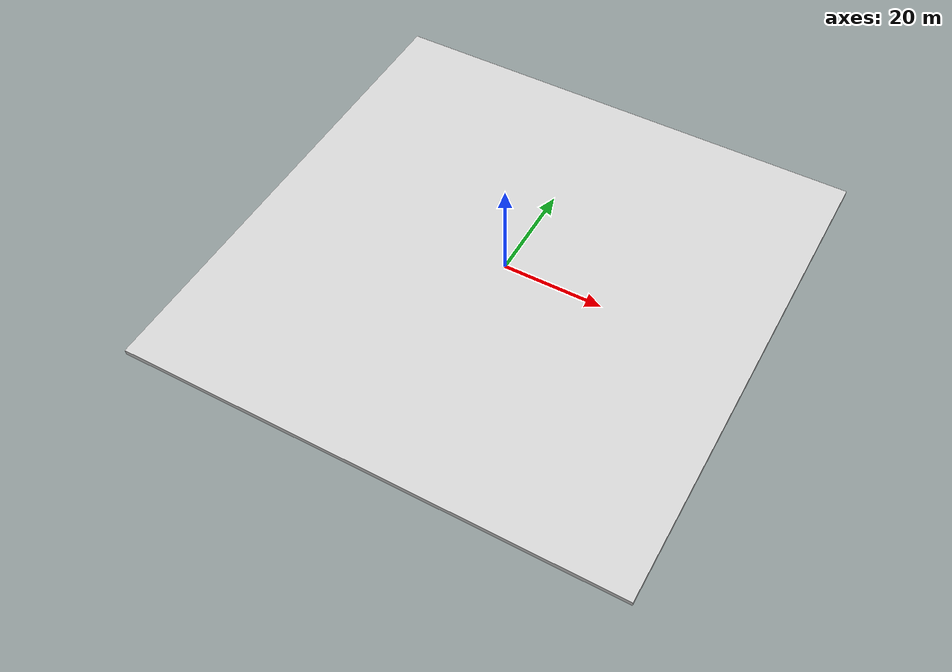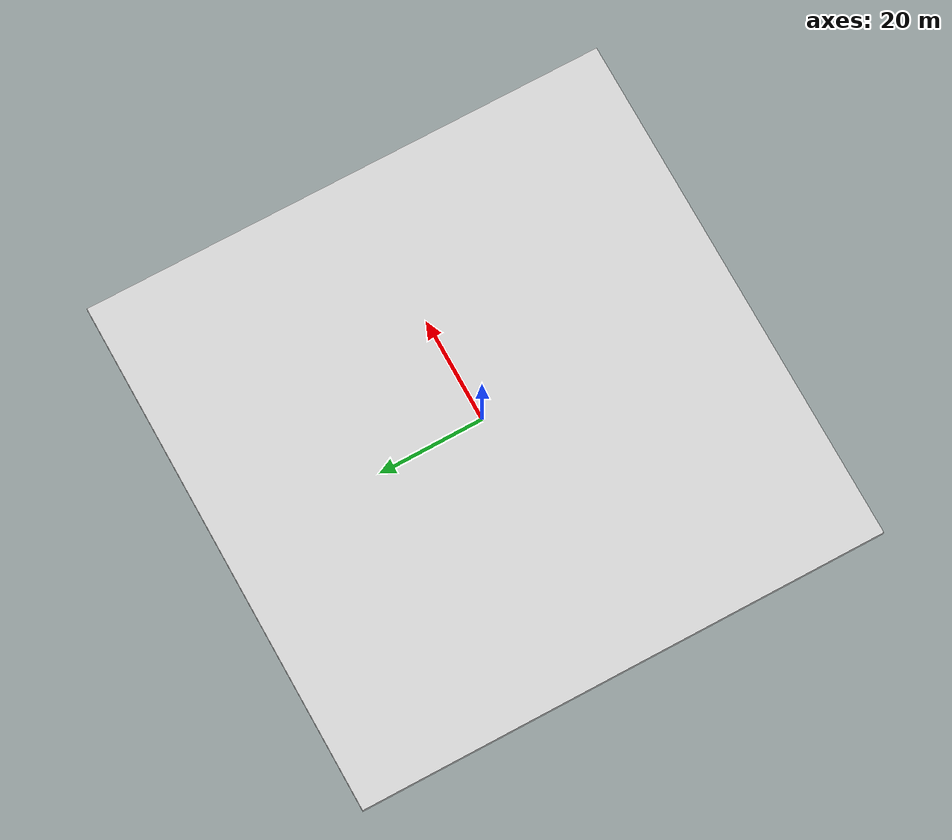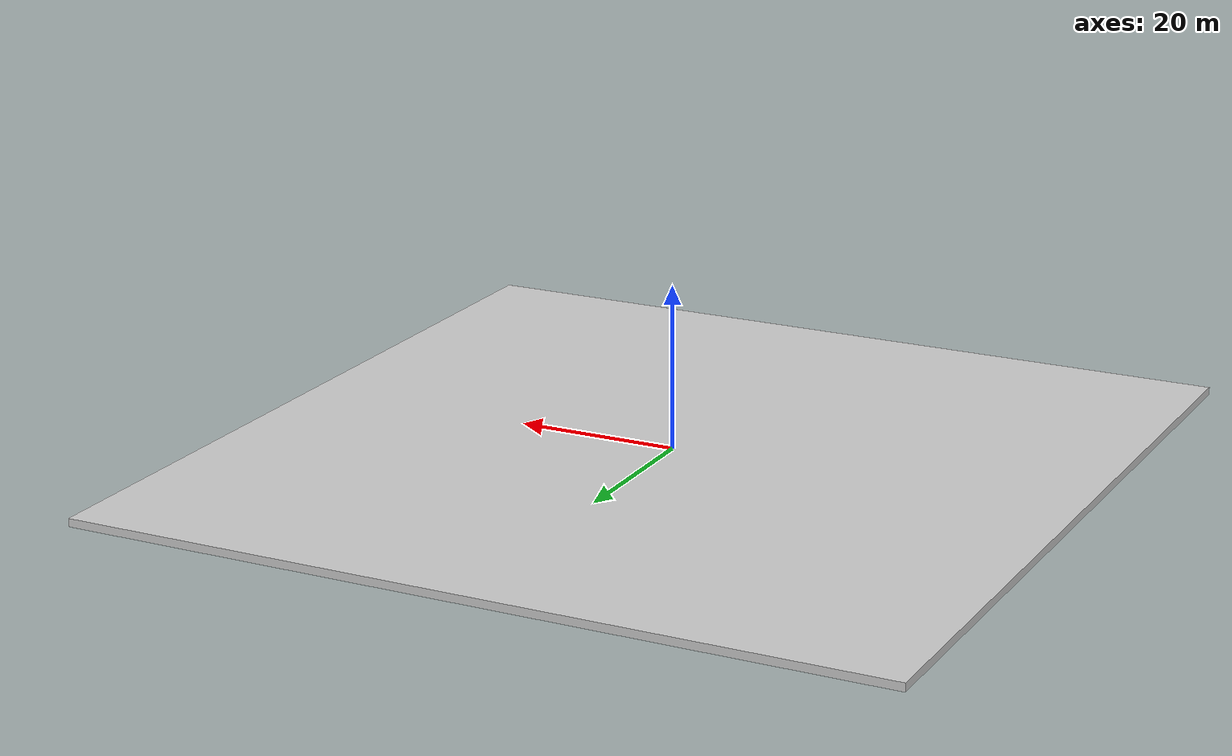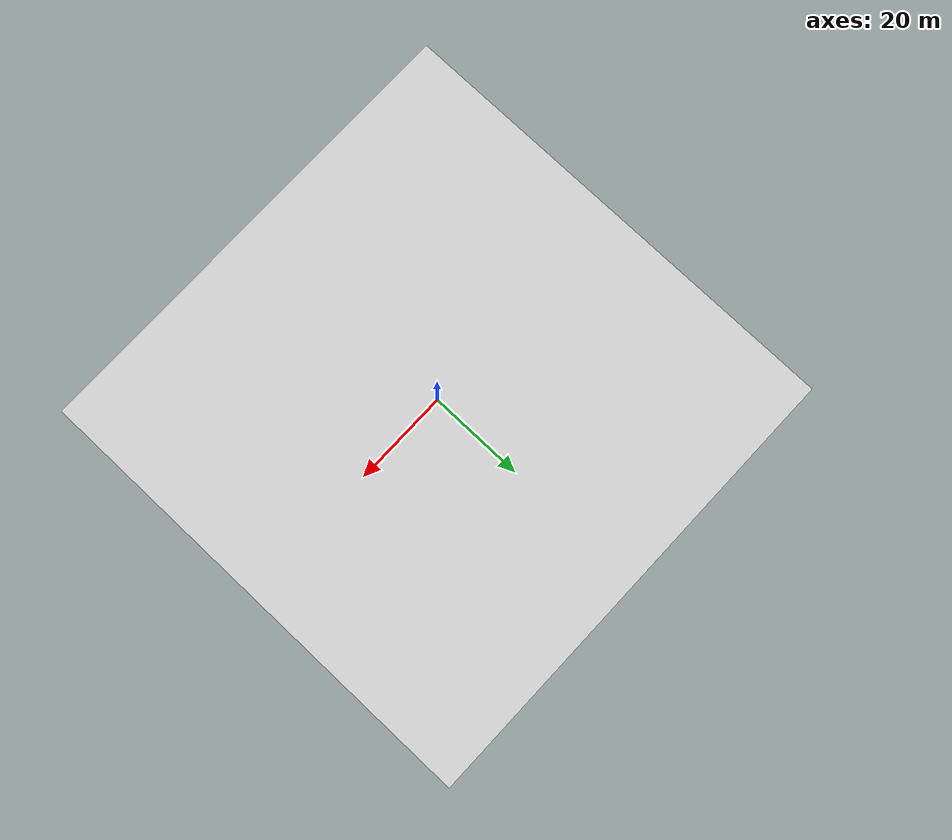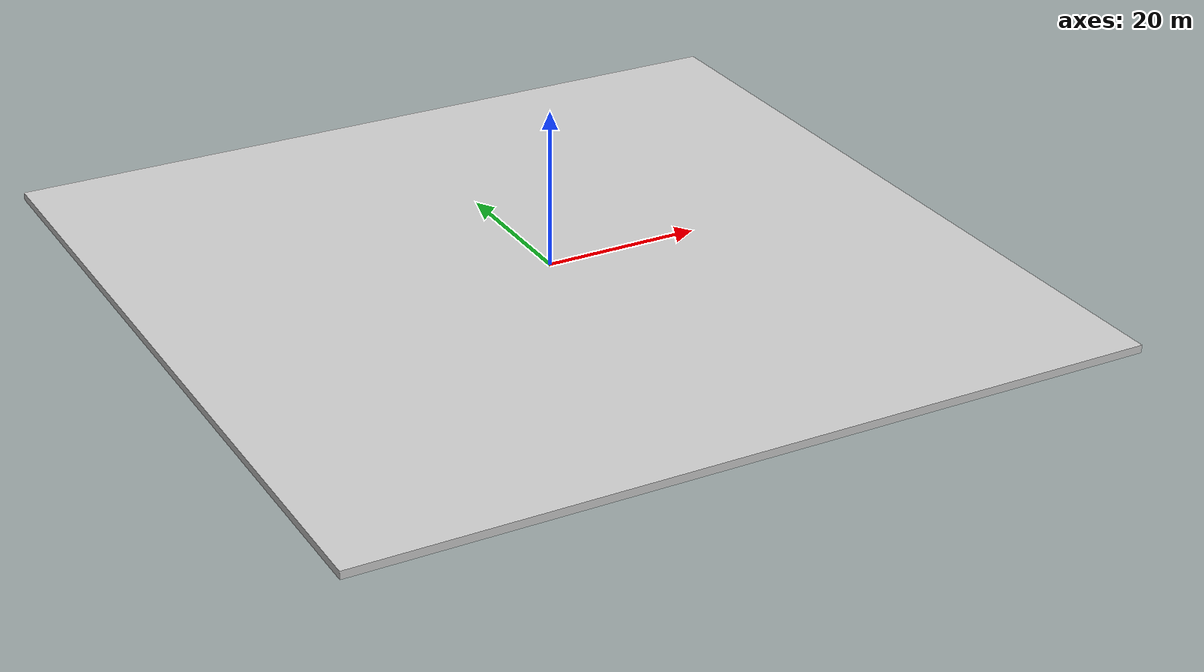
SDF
<?xml version='1.0' encoding='UTF-8'?>
<sdf version='1.6'>
  <world name='default'>

    <plugin filename='libignition-gazebo-physics-system.so' name='ignition::gazebo::systems::Physics'>
    </plugin>
    <plugin filename='libignition-gazebo-scene-broadcaster-system.so' name='ignition::gazebo::systems::SceneBroadcaster'>
    </plugin>
    <plugin filename='libignition-gazebo-user-commands-system.so' name='ignition::gazebo::systems::UserCommands'>
    </plugin>

    <physics default="true" type="dart">
        <!-- Run the simulation at max speed -->
        <real_time_factor>100</real_time_factor>
    </physics>

    <atmosphere type="adiabatic"/>

    <gui fullscreen='0'>
      <!-- 3D scene -->
      <plugin filename='Scene3D' name='3D View'>
        <ignition-gui>
          <title>3D View</title>
          <property type='bool' key='showTitleBar'>false</property>
          <property type='string' key='state'>docked</property>
        </ignition-gui>
        <engine>ogre</engine>
        <scene>scene</scene>
        <ambient_light>0.4 0.4 0.4</ambient_light>
        <background_color>0.8 0.8 0.8</background_color>
        <camera_pose>-6 0 6 0 0.5 0</camera_pose>
        <service>/world/default/scene/info</service>
        <pose_topic>/world/default/pose/info</pose_topic>
      </plugin>
      <!-- World control -->
      <plugin filename='WorldControl' name='World control'>
        <ignition-gui>
          <title>World control</title>
          <property type='bool' key='showTitleBar'>false</property>
          <property type='bool' key='resizable'>false</property>
          <property type='double' key='height'>72</property>
          <property type='double' key='width'>121</property>
          <property type='double' key='z'>1</property>
          <property type='string' key='state'>floating</property>
          <anchors target='3D View'>
            <line own='left' target='left'/>
            <line own='bottom' target='bottom'/>
          </anchors>
        </ignition-gui>
        <play_pause>true</play_pause>
        <step>true</step>
        <start_paused>true</start_paused>
        <service>/world/default/control</service>
        <stats_topic>/world/default/stats</stats_topic>
      </plugin>
      <!-- World statistics -->
      <plugin filename="WorldStats" name="World stats">
        <ignition-gui>
          <title>World stats</title>
          <property type="bool" key="showTitleBar">false</property>
          <property type="bool" key="resizable">false</property>
          <property type="double" key="height">110</property>
          <property type="double" key="width">290</property>
          <property type="double" key="z">1</property>

          <property type="string" key="state">floating</property>
          <anchors target="3D View">
            <line own="right" target="right"/>
            <line own="bottom" target="bottom"/>
          </anchors>
        </ignition-gui>
        <sim_time>true</sim_time>
        <real_time>true</real_time>
        <real_time_factor>true</real_time_factor>
        <iterations>true</iterations>
        <topic>/world/default/stats</topic>
      </plugin>
    </gui>

    <model name='ground_plane'>
      <static>true</static>
      <link name='link'>
        <pose>0 0 -0.5 0 0 0</pose>
        <collision name='collision'>
          <geometry>
            <box>
              <size>100 100 1</size>
            </box>
          </geometry>
          <surface>
            <friction>
              <ode>
                <mu>100</mu>
                <mu2>50</mu2>
              </ode>
            </friction>
          </surface>
        </collision>
        <visual name='visual'>
          <cast_shadows>false</cast_shadows>
          <geometry>
            <box>
              <size>100 100 1</size>
            </box>
          </geometry>
          <material>
            <ambient>0.8 0.8 0.8 1</ambient>
            <diffuse>0.8 0.8 0.8 1</diffuse>
            <specular>0.8 0.8 0.8 1</specular>
          </material>
        </visual>
      </link>
    </model>

  </world>
</sdf>
